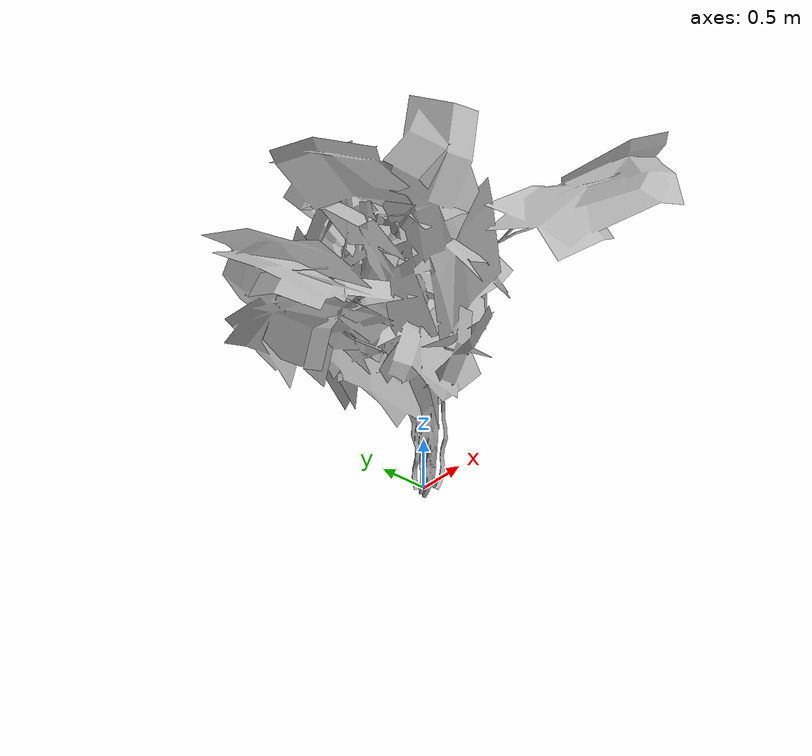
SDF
<?xml version="1.0" ?>
<sdf version="1.5">
  <model name="Bush 0">
     <static>true</static>
    <pose frame=''>0 0 0 1.57079 0 0</pose>
    <link name="link">
      <pose frame=''>0 0 0 0 0 0</pose>
      <collision name="collision">
        <geometry>
          <mesh>
            <scale>5 5 5</scale>
            <uri>model://bush_0/meshes/bush_0.obj</uri>
          </mesh>
        </geometry>
      </collision>
      <visual name="visual">
        <geometry>
          <mesh>

            <scale>5 5 5</scale>
            <uri>model://bush_0/meshes/bush_0.obj</uri>
          </mesh>
        </geometry>
      </visual>
    </link>
  </model>
</sdf>
